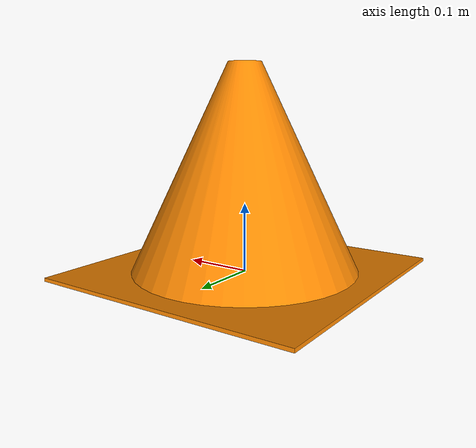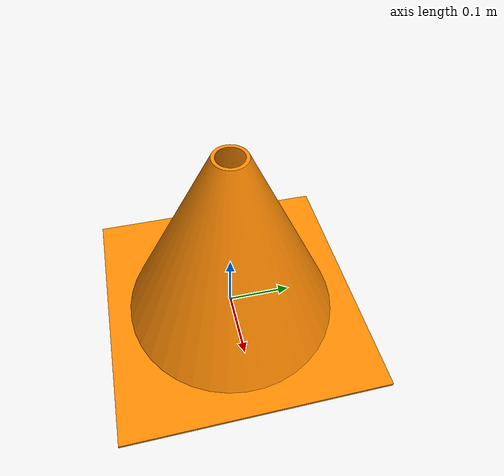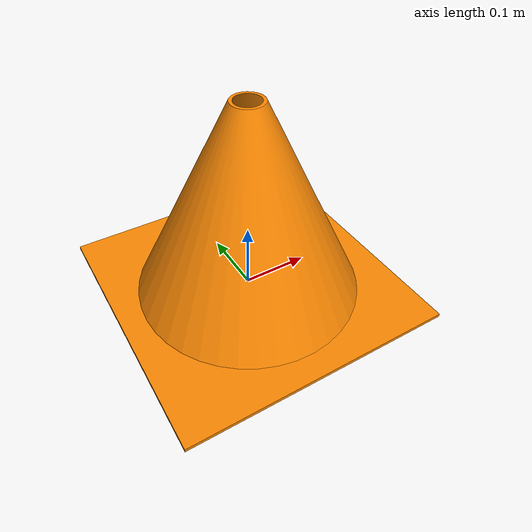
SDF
<?xml version="1.0" ?>
<sdf version="1.6">

  <model name="orange_cone">

    <!-- IMPORTANT -->
    <!-- false = movable -->
    <static>false</static>

    <link name="cone_link">

      <!-- Initial pose -->
      <pose>0 0 0 0 0 0</pose>

      <!-- Physics -->
      <inertial>
        <mass>0.35</mass>

        <inertia>
          <ixx>0.01</ixx>
          <iyy>0.01</iyy>
          <izz>0.01</izz>

          <ixy>0.0</ixy>
          <ixz>0.0</ixz>
          <iyz>0.0</iyz>
        </inertia>
      </inertial>

      <!-- VISUAL -->
      <visual name="visual">

        <geometry>
          <mesh>
            <uri>model://orange_cone/meshes/orange_cone.dae</uri>

            <material>

                <!-- base color -->
                <ambient>1 0.45 0 1</ambient>
                <diffuse>1 0.45 0 1</diffuse>
                <specular>0.1 0.1 0.1 1</specular>
                <emissive>0 0 0 1</emissive>

                <!-- remove ugly reflections -->

                <!-- no glow -->

            </material>

            <!-- scale if needed -->
            <scale>1 1 1</scale>
          </mesh>
        </geometry>

      </visual>

      <!-- COLLISION -->
      <collision name="collision">

        <geometry>
          <mesh>
            <uri>model://orange_cone/meshes/orange_cone.dae</uri>

            <!-- SAME SCALE -->
            <scale>1 1 1</scale>
          </mesh>
        </geometry>

        <!-- collision physics -->
        <surface>
          <friction>
            <ode>
              <mu>1.0</mu>
              <mu2>1.0</mu2>
            </ode>
          </friction>

          <bounce/>

          <contact>
            <ode/>
          </contact>
        </surface>

      </collision>

    </link>

  </model>
</sdf>
